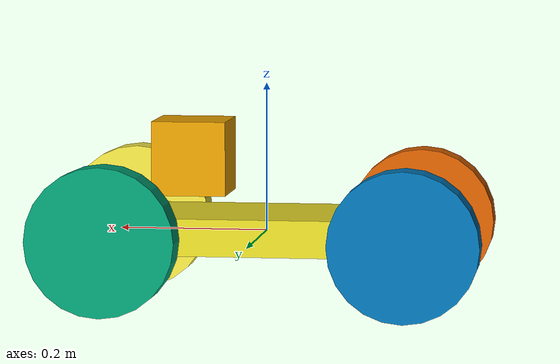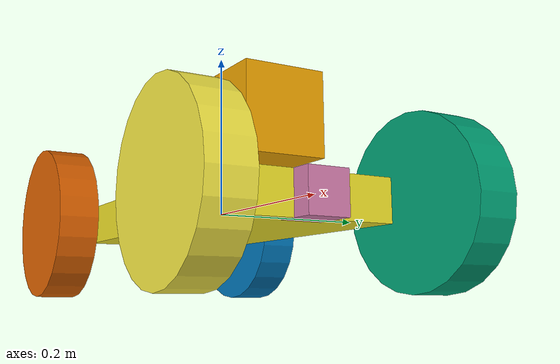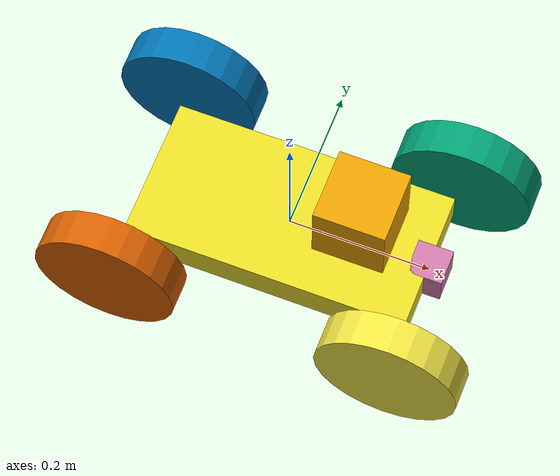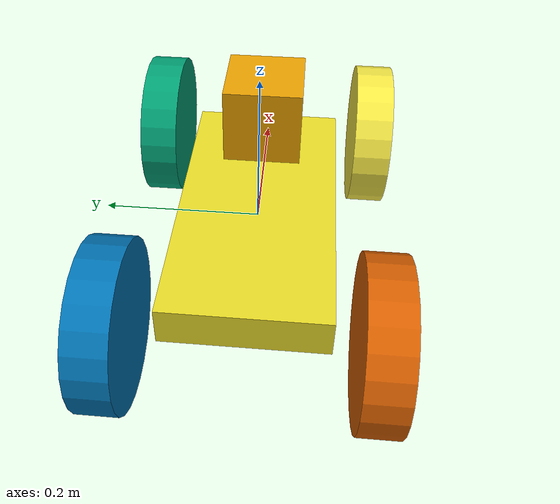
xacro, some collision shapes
<?xml version='1.0'?>
<robot name="my_robot" xmlns:xacro="http://www.ros.org/wiki/xacro">

  <link name="robot_footprint"></link>

  <xacro:include filename="$(find my_robot)/urdf/my_robot.gazebo" />

	<xacro:macro name="wheel" params="name">

	    <link name="${name}">
				<pose>0 0 0 0 0 0</pose>

				<inertial>
				  <mass value="1.0"/>
				  <origin xyz="0.0 0 0" rpy=" 0 1.5707 1.5707"/>
				  <inertia
				      ixx="0.1" ixy="0" ixz="0"
				      iyy="0.1" iyz="0"
				      izz="0.1"
				  />
				</inertial>

				<collision name='collision'>
				  <origin xyz="0 0 0" rpy=" 0 1.5707 1.5707"/>
				  <geometry>
				    <cylinder radius="0.1" length="0.05"/>
				  </geometry>
				</collision>

				<visual name='visual'>
				  <origin xyz="0 0 0" rpy=" 0 1.5707 1.5707"/>
				  <geometry>
				    <cylinder radius="0.1" length="0.05"/>
				  </geometry>
				</visual>

	    </link>

	</xacro:macro>

  <joint name="robot_footprint_joint" type="fixed">
    <origin xyz="0 0 0" rpy="0 0 0" />
    <parent link="robot_footprint"/>
    <child link="chassis" />
  </joint>

  <link name='chassis'>
    <pose>0 0 0.1 0 0 0</pose>

    <inertial>
      <mass value="10.0"/>
      <origin xyz="0.0 0 0" rpy="0 0 0"/>
      <inertia
          ixx="0.1" ixy="0" ixz="0"
          iyy="0.1" iyz="0"
          izz="0.1"
      />
    </inertial>

    <collision name='collision'>
      <origin xyz="0 0 0" rpy="0 0 0"/>
      <geometry>
        <box size=".4 .2 .05"/>
      </geometry>
    </collision>

    <visual name='chassis_visual'>
      <origin xyz="0 0 0" rpy="0 0 0"/>
      <geometry>
        <box size=".4 .2 .05"/>
      </geometry>
    </visual>

  </link>

  <gazebo reference="chassis">
    <material>Gazebo/Yellow</material>
  </gazebo>

	<xacro:wheel name="left_wheel_upper"/>
	<xacro:wheel name="right_wheel_upper"/>
	<xacro:wheel name="left_wheel_bottom"/>
	<xacro:wheel name="right_wheel_bottom"/>

  <joint type="continuous" name="front_left_wheel_joint">
    <origin xyz="0.2 0.15 0" rpy="0 0 0"/>
    <child link="left_wheel_upper"/>
    <parent link="chassis"/>
    <axis xyz="0 1 0" rpy="0 0 0"/>
    <limit effort="10000" velocity="1000"/>
    <dynamics damping="1.0" friction="0.5"/>
  </joint>

  <joint type="continuous" name="front_right_wheel_joint">
    <origin xyz="0.2 -0.15 0" rpy="0 0 0"/>
    <child link="right_wheel_upper"/>
    <parent link="chassis"/>
    <axis xyz="0 1 0" rpy="0 0 0"/>
    <limit effort="10000" velocity="1000"/>
    <dynamics damping="1.0" friction="0.5"/>
  </joint>

  <joint type="continuous" name="back_left_wheel_joint">
    <origin xyz="-0.2 0.15 0" rpy="0 0 0"/>
    <child link="left_wheel_bottom"/>
    <parent link="chassis"/>
    <axis xyz="0 1 0" rpy="0 0 0"/>
    <limit effort="10000" velocity="1000"/>
    <dynamics damping="1.0" friction="0.5"/>
  </joint>

  <joint type="continuous" name="back_right_wheel_joint">
    <origin xyz="-0.2 -0.15 0" rpy="0 0 0"/>
    <child link="right_wheel_bottom"/>
    <parent link="chassis"/>
    <axis xyz="0 1 0" rpy="0 0 0"/>
    <limit effort="10000" velocity="1000"/>
    <dynamics damping="1.0" friction="0.5"/>
  </joint>

  <link name='camera'>
    <pose>0 0 0 0 0 0</pose>

    <inertial>
      <mass value="0.1"/>
      <origin xyz="0.0 0 0" rpy="0.0 0 0"/>
      <inertia
          ixx="1e-6" ixy="0" ixz="0"
          iyy="1e-6" iyz="0"
          izz="1e-6"
      />
    </inertial>

    <collision name='collision'>
      <origin xyz="0 0 0" rpy=" 0 0 0"/>
      <geometry>
        <box size="0.05 0.05 0.05"/>
      </geometry>
    </collision>

    <visual name='visual'>
      <origin xyz="0 0 0" rpy="0 0 0"/>
      <geometry>
        <box size="0.05 0.05 0.05"/>
      </geometry>
    </visual>

  </link>

  <link name="camera_link_optical"></link>

  <joint name="camera_optical_joint" type="fixed">
    <origin xyz="0 0 0" rpy="-1.5707 0 -1.5707"/>
    <parent link="camera"/>
    <child link="camera_link_optical"/>
  </joint>

  <joint type="fixed" name="camera_joint">
    <origin xyz=".2 0 0" rpy="0 0 0"/>
    <child link="camera"/>
    <parent link="chassis"/>
    <axis xyz="0 1 0" rpy="0 0 0"/>
  </joint>

  <link name='hokuyo'>
    <pose>0 0 0 0 0 0</pose>

    <inertial>
      <mass value="1e-5"/>
      <origin xyz="0.0 0 0" rpy="0.0 0 0"/>
      <inertia
          ixx="1e-6" ixy="0" ixz="0"
          iyy="1e-6" iyz="0"
          izz="1e-6"
      />
    </inertial>

    <collision name='collision'>
      <origin xyz="0 0 0" rpy=" 0 0 0"/>
      <geometry>
        <box size="0.1 0.1 0.1"/>
      </geometry>
    </collision>

    <visual name='hokuyo_visual'>
      <origin xyz="0 0 0" rpy="0 0 0"/>
      <geometry>
        <mesh filename="package://my_robot/meshes/hokuyo.dae"/>
      </geometry>
    </visual>
  </link>

  <joint type="fixed" name="hokuyo_joint">
    <origin xyz="0.1 0 0.1" rpy="0 0 0"/>
    <child link="hokuyo"/>
    <parent link="chassis"/>
    <axis xyz="0 1 0" rpy="0 0 0"/>
  </joint>

</robot>
